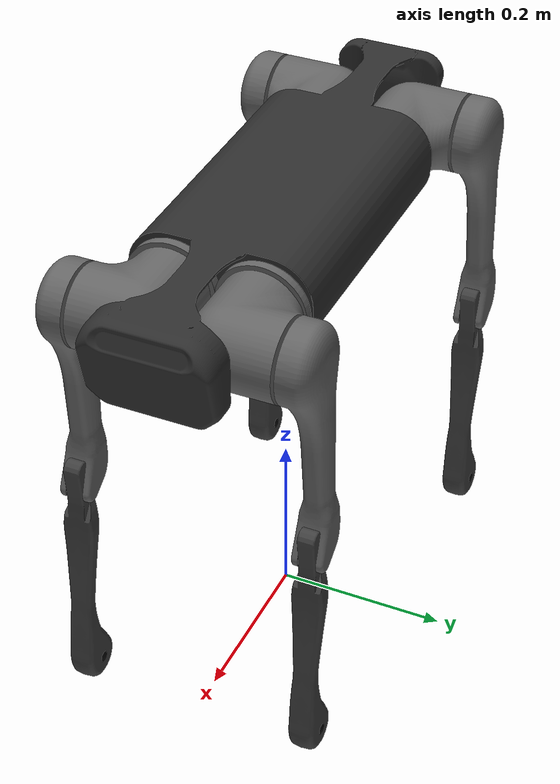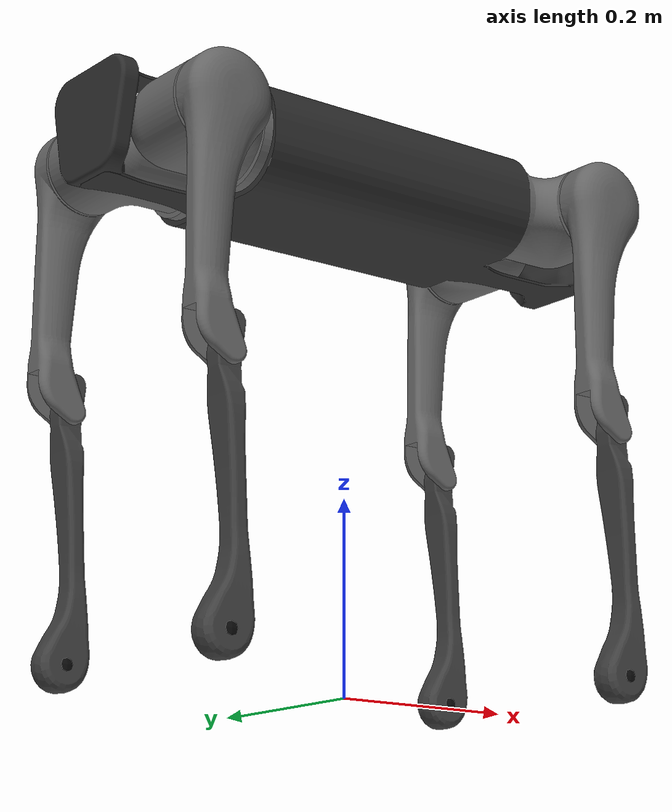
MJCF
<mujoco model="aliengo">
    <default>
        <default class="robot">
            <default class="motor">
                <joint />
                <motor ctrlrange="-44.4 44.4" forcerange="-44.4 44.4" />
            </default>
            <default class="visual">
                <geom material="visualgeom" contype="0" conaffinity="0" group="2" />
            </default>
            <default class="collision">
                <geom material="collision_material" condim="1" contype="0" conaffinity="1"
                    priority="0" group="3" margin="0.001" solref="0.005 1"
                    solimp="0.015 1 0.023" friction="0.8 0.02 0.01" />
                <default class="foot">
                    <geom condim="6" priority="1" />
                </default>
            </default>
        </default>
    </default>

    <compiler angle="radian" />

    <asset>
        <material name="black" rgba="0.0 0.0 0.0 1.0" />
        <material name="blue" rgba="0.0 0.0 0.8 1.0" />
        <material name="green" rgba="0.0 0.8 0.0 1.0" />
        <material name="grey" rgba="0.2 0.2 0.2 1.0" />
        <material name="silver" rgba="0.9137254901960784 0.9137254901960784 0.8470588235294118 1.0" />
        <material name="orange" rgba="1.0 0.4235294117647059 0.0392156862745098 1.0" />
        <material name="brown" rgba="0.8705882352941177 0.8117647058823529 0.7647058823529411 1.0" />
        <material name="red" rgba="0.8 0.0 0.0 1.0" />
        <material name="white" rgba="1.0 1.0 1.0 1.0" />
        <material name="default_material" rgba="0.7 0.7 0.7 1" />
        <material name="collision_material" rgba="1.0 0.28 0.1 0.9" />
        <material name="carbon" rgba="0.18 0.18 0.18 1.0" specular="0.2" shininess="0.3" />
        <material name="leg_grey" rgba="0.4 0.4 0.4 1.0" specular="0.3" shininess="0.4" />
        <material name="calf_grey" rgba="0.251 0.251 0.251 1.0" specular="0.2" shininess="0.3" />
        <material name="foot_black" rgba="0.05 0.05 0.05 1.0" specular="0.1" shininess="0.2" />
        <mesh name="trunk.stl" file="assets/trunk.stl" />
        <mesh name="hip.stl" file="assets/hip.stl" />
        <mesh name="thigh_mirror.stl" file="assets/thigh_mirror.stl" />
        <mesh name="calf.stl" file="assets/calf.stl" scale="0.0254 0.0254 0.0254" />
        <mesh name="thigh.stl" file="assets/thigh.stl" />
    </asset>

    <worldbody>
        <body name="base" pos="0.00000000 0.00000000 0.52650000" quat="1 0 0 0" childclass="robot">
            <freejoint name="floating_base" />
            <geom name="base_visual" pos="0 0 0" quat="1.0 0.0 0.0 0.0" material="default_material"
                type="box" size="0.0005 0.0005 0.0005" class="visual" />
            <body name="trunk" pos="0 0 0" quat="1.0 0.0 0.0 0.0">
                <inertial pos="0.008811 0.003839 0.000273" quat="1.0 0.0 0.0 0.0" mass="11.644"
                    diaginertia="0.051944892 0.24693924 0.270948307" />
                <geom name="trunk_collision" pos="0 0 0" quat="1.0 0.0 0.0 0.0" type="box"
                    size="0.3235 0.075 0.056" class="collision" />
                <geom name="trunk_visual" pos="0 0 0" quat="1.0 0.0 0.0 0.0" material="carbon"
                    type="mesh" mesh="trunk.stl" class="visual" />
                <body name="imu_link" pos="0 0 0" quat="1.0 0.0 0.0 0.0">
                    <inertial pos="0 0 0" quat="1.0 0.0 0.0 0.0" mass="0.001"
                        diaginertia="0.0001 1e-06 0.0001" />
                    <geom name="imu_link_collision" pos="0 0 0" quat="1.0 0.0 0.0 0.0" type="box"
                        size="0.0005 0.0005 0.0005" class="collision" />
                    <geom name="imu_link_visual" pos="0 0 0" quat="1.0 0.0 0.0 0.0" material="red"
                        type="box" size="0.0005 0.0005 0.0005" class="visual" />
                </body>
                <body name="FR_hip" pos="0.2407 -0.051 0" quat="1.0 0.0 0.0 0.0">
                    <joint name="FR_hip_joint" type="hinge" ref="0.0" class="motor"
                        range="-1.2217304763960306 1.2217304763960306" axis="1 0 0" />
                    <inertial pos="-0.022191 -0.015144 -1.5e-05" quat="1.0 0.0 0.0 0.0" mass="1.993"
                        diaginertia="0.002446735 0.003925876 0.004148145" />
                    <geom name="FR_hip_collision" pos="0 -0.083 0"
                        quat="0.7071067811865476 0.7071067811865475 0.0 0.0" type="cylinder"
                        size="0.046 0.0209" class="collision" />
                    <geom name="FR_hip_visual" pos="0 0 0" quat="6.123233995736766e-17 1.0 0.0 0.0"
                        material="leg_grey" type="mesh" mesh="hip.stl" class="visual" />
                    <body name="FR_thigh" pos="0 -0.0868 0" quat="1.0 0.0 0.0 0.0">
                        <joint name="FR_thigh_joint" type="hinge" ref="0.0" class="motor"
                            axis="0 1 0" />
                        <inertial pos="-0.005607 0.003877 -0.048199" quat="1.0 0.0 0.0 0.0"
                            mass="0.639" diaginertia="0.004173855 0.004343802 0.000340136" />
                        <geom name="FR_thigh_collision" pos="0 0 -0.125"
                            quat="0.7071067811865476 0.0 0.7071067811865475 0.0" type="box"
                            size="0.125 0.0187 0.0215" class="collision" />
                        <geom name="FR_thigh_visual" pos="0 0 0" quat="1.0 0.0 0.0 0.0"
                            material="leg_grey" type="mesh" mesh="thigh_mirror.stl" class="visual" />
                        <body name="FR_calf" pos="0 0 -0.25" quat="1.0 0.0 0.0 0.0">
                            <joint name="FR_calf_joint" type="hinge" ref="0.0" class="motor"
                                range="-2.775073510670984 -0.6457718232379019" axis="0 1 0" />
                            <inertial pos="0.002781 6.3e-05 -0.142518" quat="1.0 0.0 0.0 0.0"
                                mass="0.207" diaginertia="0.002129279 0.002141463 3.7583e-05" />
                            <geom name="FR_calf_collision" pos="0 0 -0.125"
                                quat="0.7071067811865476 0.0 0.7071067811865475 0.0" type="box"
                                size="0.125 0.0104 0.008" class="collision" />
                            <geom name="FR_calf_visual" pos="0 0 0" quat="1.0 0.0 0.0 0.0"
                                material="calf_grey" type="mesh" mesh="calf.stl" class="visual" />
                            <body name="FR_foot" pos="0 0 -0.25" quat="1.0 0.0 0.0 0.0">
                                <inertial pos="0 0 0" mass="0.06"
                                    diaginertia="1.6853999999999998e-05 1.6853999999999998e-05 1.6853999999999998e-05" />
                                <geom name="FR_foot_collision" pos="0 0 0" quat="1.0 0.0 0.0 0.0"
                                    type="sphere" size="0.0265" class="foot" />
                                <geom name="FR_foot_visual" pos="0 0 0" quat="1.0 0.0 0.0 0.0"
                                    material="foot_black" type="sphere" size="0.0165" class="visual" />
                            </body>
                        </body>
                        <body name="FR_calf_rotor" pos="0.0 0.0997 0" quat="1.0 0.0 0.0 0.0">
                            <inertial pos="0.0 0.0 0.0" quat="1.0 0.0 0.0 0.0" mass="0.132"
                                diaginertia="0.000145463 0.000133031 0.000145463" />
                            <geom name="FR_calf_rotor_collision" pos="0 0 0"
                                quat="0.7071067811865476 0.7071067811865475 0.0 0.0" type="cylinder"
                                size="0.035 0.01" class="collision" />
                            <geom name="FR_calf_rotor_visual" pos="0 0 0"
                                quat="0.7071067811865476 0.7071067811865475 0.0 0.0"
                                material="leg_grey" type="cylinder" size="0.035 0.01" class="visual" />
                        </body>
                    </body>
                    <body name="FR_thigh_rotor" pos="0.0 -0.0298 0" quat="1.0 0.0 0.0 0.0">
                        <inertial pos="0.0 0.0 0.0" quat="1.0 0.0 0.0 0.0" mass="0.146"
                            diaginertia="8.3352e-05 0.000138702 8.3352e-05" />
                        <geom name="FR_thigh_rotor_collision" pos="0 0 0"
                            quat="0.7071067811865476 0.7071067811865475 0.0 0.0" type="cylinder"
                            size="0.035 0.01" class="collision" />
                        <geom name="FR_thigh_rotor_visual" pos="0 0 0"
                            quat="0.7071067811865476 0.7071067811865475 0.0 0.0" material="leg_grey"
                            type="cylinder" size="0.035 0.01" class="visual" />
                    </body>
                </body>
                <body name="FR_hip_rotor" pos="0.139985 -0.051 0" quat="1.0 0.0 0.0 0.0">
                    <inertial pos="0.0 0.0 0.0" quat="1.0 0.0 0.0 0.0" mass="0.146"
                        diaginertia="0.000138702 8.3352e-05 8.3352e-05" />
                    <geom name="FR_hip_rotor_collision" pos="0 0 0"
                        quat="0.7071067811865476 0.0 0.7071067811865475 0.0" type="cylinder"
                        size="0.035 0.01" class="collision" />
                    <geom name="FR_hip_rotor_visual" pos="0 0 0"
                        quat="0.7071067811865476 0.0 0.7071067811865475 0.0" material="leg_grey"
                        type="cylinder" size="0.035 0.01" class="visual" />
                </body>
                <body name="FL_hip" pos="0.2407 0.051 0" quat="1.0 0.0 0.0 0.0">
                    <joint name="FL_hip_joint" type="hinge" ref="0.0" class="motor"
                        range="-1.2217304763960306 1.2217304763960306" axis="1 0 0" />
                    <inertial pos="-0.022191 0.015144 -1.5e-05" quat="1.0 0.0 0.0 0.0" mass="1.993"
                        diaginertia="0.002446735 0.003925876 0.004148145" />
                    <geom name="FL_hip_collision" pos="0 0.083 0"
                        quat="0.7071067811865476 0.7071067811865475 0.0 0.0" type="cylinder"
                        size="0.046 0.0209" class="collision" />
                    <geom name="FL_hip_visual" pos="0 0 0" quat="1.0 0.0 0.0 0.0"
                        material="leg_grey"
                        type="mesh" mesh="hip.stl" class="visual" />
                    <body name="FL_thigh" pos="0 0.0868 0" quat="1.0 0.0 0.0 0.0">
                        <joint name="FL_thigh_joint" type="hinge" ref="0.0" class="motor"
                            axis="0 1 0" />
                        <inertial pos="-0.005607 -0.003877 -0.048199" quat="1.0 0.0 0.0 0.0"
                            mass="0.639" diaginertia="0.004173855 0.004343802 0.000340136" />
                        <geom name="FL_thigh_collision" pos="0 0 -0.125"
                            quat="0.7071067811865476 0.0 0.7071067811865475 0.0" type="box"
                            size="0.125 0.0187 0.0215" class="collision" />
                        <geom name="FL_thigh_visual" pos="0 0 0" quat="1.0 0.0 0.0 0.0"
                            material="leg_grey" type="mesh" mesh="thigh.stl" class="visual" />
                        <body name="FL_calf" pos="0 0 -0.25" quat="1.0 0.0 0.0 0.0">
                            <joint name="FL_calf_joint" type="hinge" ref="0.0" class="motor"
                                range="-2.775073510670984 -0.6457718232379019" axis="0 1 0" />
                            <inertial pos="0.002781 6.3e-05 -0.142518" quat="1.0 0.0 0.0 0.0"
                                mass="0.207" diaginertia="0.002129279 0.002141463 3.7583e-05" />
                            <geom name="FL_calf_collision" pos="0 0 -0.125"
                                quat="0.7071067811865476 0.0 0.7071067811865475 0.0" type="box"
                                size="0.125 0.0104 0.008" class="collision" />
                            <geom name="FL_calf_visual" pos="0 0 0" quat="1.0 0.0 0.0 0.0"
                                material="calf_grey" type="mesh" mesh="calf.stl" class="visual" />
                            <body name="FL_foot" pos="0 0 -0.25" quat="1.0 0.0 0.0 0.0">
                                <inertial pos="0 0 0" mass="0.06"
                                    diaginertia="1.6853999999999998e-05 1.6853999999999998e-05 1.6853999999999998e-05" />
                                <geom name="FL_foot_collision" pos="0 0 0" quat="1.0 0.0 0.0 0.0"
                                    type="sphere" size="0.0265" class="foot" />
                                <geom name="FL_foot_visual" pos="0 0 0" quat="1.0 0.0 0.0 0.0"
                                    material="foot_black" type="sphere" size="0.0165" class="visual" />
                            </body>
                        </body>
                        <body name="FL_calf_rotor" pos="0.0 -0.0997 0" quat="1.0 0.0 0.0 0.0">
                            <inertial pos="0.0 0.0 0.0" quat="1.0 0.0 0.0 0.0" mass="0.132"
                                diaginertia="0.000145463 0.000133031 0.000145463" />
                            <geom name="FL_calf_rotor_collision" pos="0 0 0"
                                quat="0.7071067811865476 0.7071067811865475 0.0 0.0" type="cylinder"
                                size="0.035 0.01" class="collision" />
                            <geom name="FL_calf_rotor_visual" pos="0 0 0"
                                quat="0.7071067811865476 0.7071067811865475 0.0 0.0"
                                material="leg_grey" type="cylinder" size="0.035 0.01" class="visual" />
                        </body>
                    </body>
                    <body name="FL_thigh_rotor" pos="0.0 0.0298 0" quat="1.0 0.0 0.0 0.0">
                        <inertial pos="0.0 0.0 0.0" quat="1.0 0.0 0.0 0.0" mass="0.146"
                            diaginertia="8.3352e-05 0.000138702 8.3352e-05" />
                        <geom name="FL_thigh_rotor_collision" pos="0 0 0"
                            quat="0.7071067811865476 0.7071067811865475 0.0 0.0" type="cylinder"
                            size="0.035 0.01" class="collision" />
                        <geom name="FL_thigh_rotor_visual" pos="0 0 0"
                            quat="0.7071067811865476 0.7071067811865475 0.0 0.0" material="leg_grey"
                            type="cylinder" size="0.035 0.01" class="visual" />
                    </body>
                </body>
                <body name="FL_hip_rotor" pos="0.139985 0.051 0" quat="1.0 0.0 0.0 0.0">
                    <inertial pos="0.0 0.0 0.0" quat="1.0 0.0 0.0 0.0" mass="0.146"
                        diaginertia="0.000138702 8.3352e-05 8.3352e-05" />
                    <geom name="FL_hip_rotor_collision" pos="0 0 0"
                        quat="0.7071067811865476 0.0 0.7071067811865475 0.0" type="cylinder"
                        size="0.035 0.01" class="collision" />
                    <geom name="FL_hip_rotor_visual" pos="0 0 0"
                        quat="0.7071067811865476 0.0 0.7071067811865475 0.0" material="leg_grey"
                        type="cylinder" size="0.035 0.01" class="visual" />
                </body>
                <body name="RR_hip" pos="-0.2407 -0.051 0" quat="1.0 0.0 0.0 0.0">
                    <joint name="RR_hip_joint" type="hinge" ref="0.0" class="motor"
                        range="-1.2217304763960306 1.2217304763960306" axis="1 0 0" />
                    <inertial pos="0.022191 -0.015144 -1.5e-05" quat="1.0 0.0 0.0 0.0" mass="1.993"
                        diaginertia="0.002446735 0.003925876 0.004148145" />
                    <geom name="RR_hip_collision" pos="0 -0.083 0"
                        quat="0.7071067811865476 0.7071067811865475 0.0 0.0" type="cylinder"
                        size="0.046 0.0209" class="collision" />
                    <geom name="RR_hip_visual" pos="0 0 0"
                        quat="3.749399456654644e-33 6.123233995736766e-17 6.123233995736766e-17 -1.0"
                        material="leg_grey" type="mesh" mesh="hip.stl" class="visual" />
                    <body name="RR_thigh" pos="0 -0.0868 0" quat="1.0 0.0 0.0 0.0">
                        <joint name="RR_thigh_joint" type="hinge" ref="0.0" class="motor"
                            axis="0 1 0" />
                        <inertial pos="-0.005607 0.003877 -0.048199" quat="1.0 0.0 0.0 0.0"
                            mass="0.639" diaginertia="0.004173855 0.004343802 0.000340136" />
                        <geom name="RR_thigh_collision" pos="0 0 -0.125"
                            quat="0.7071067811865476 0.0 0.7071067811865475 0.0" type="box"
                            size="0.125 0.0187 0.0215" class="collision" />
                        <geom name="RR_thigh_visual" pos="0 0 0" quat="1.0 0.0 0.0 0.0"
                            material="leg_grey" type="mesh" mesh="thigh_mirror.stl" class="visual" />
                        <body name="RR_calf" pos="0 0 -0.25" quat="1.0 0.0 0.0 0.0">
                            <joint name="RR_calf_joint" type="hinge" ref="0.0" class="motor"
                                range="-2.775073510670984 -0.6457718232379019" axis="0 1 0" />
                            <inertial pos="0.002781 6.3e-05 -0.142518" quat="1.0 0.0 0.0 0.0"
                                mass="0.207" diaginertia="0.002129279 0.002141463 3.7583e-05" />
                            <geom name="RR_calf_collision" pos="0 0 -0.125"
                                quat="0.7071067811865476 0.0 0.7071067811865475 0.0" type="box"
                                size="0.125 0.0104 0.008" class="collision" />
                            <geom name="RR_calf_visual" pos="0 0 0" quat="1.0 0.0 0.0 0.0"
                                material="calf_grey" type="mesh" mesh="calf.stl" class="visual" />
                            <body name="RR_foot" pos="0 0 -0.25" quat="1.0 0.0 0.0 0.0">
                                <inertial pos="0 0 0" mass="0.06"
                                    diaginertia="1.6853999999999998e-05 1.6853999999999998e-05 1.6853999999999998e-05" />
                                <geom name="RR_foot_collision" pos="0 0 0" quat="1.0 0.0 0.0 0.0"
                                    type="sphere" size="0.0265" class="foot" />
                                <geom name="RR_foot_visual" pos="0 0 0" quat="1.0 0.0 0.0 0.0"
                                    material="foot_black" type="sphere" size="0.0165" class="visual" />
                            </body>
                        </body>
                        <body name="RR_calf_rotor" pos="0.0 0.0997 0" quat="1.0 0.0 0.0 0.0">
                            <inertial pos="0.0 0.0 0.0" quat="1.0 0.0 0.0 0.0" mass="0.132"
                                diaginertia="0.000145463 0.000133031 0.000145463" />
                            <geom name="RR_calf_rotor_collision" pos="0 0 0"
                                quat="0.7071067811865476 0.7071067811865475 0.0 0.0" type="cylinder"
                                size="0.035 0.01" class="collision" />
                            <geom name="RR_calf_rotor_visual" pos="0 0 0"
                                quat="0.7071067811865476 0.7071067811865475 0.0 0.0"
                                material="leg_grey" type="cylinder" size="0.035 0.01" class="visual" />
                        </body>
                    </body>
                    <body name="RR_thigh_rotor" pos="0.0 -0.0298 0" quat="1.0 0.0 0.0 0.0">
                        <inertial pos="0.0 0.0 0.0" quat="1.0 0.0 0.0 0.0" mass="0.146"
                            diaginertia="8.3352e-05 0.000138702 8.3352e-05" />
                        <geom name="RR_thigh_rotor_collision" pos="0 0 0"
                            quat="0.7071067811865476 0.7071067811865475 0.0 0.0" type="cylinder"
                            size="0.035 0.01" class="collision" />
                        <geom name="RR_thigh_rotor_visual" pos="0 0 0"
                            quat="0.7071067811865476 0.7071067811865475 0.0 0.0" material="leg_grey"
                            type="cylinder" size="0.035 0.01" class="visual" />
                    </body>
                </body>
                <body name="RR_hip_rotor" pos="-0.139985 -0.051 0" quat="1.0 0.0 0.0 0.0">
                    <inertial pos="0.0 0.0 0.0" quat="1.0 0.0 0.0 0.0" mass="0.146"
                        diaginertia="0.000138702 8.3352e-05 8.3352e-05" />
                    <geom name="RR_hip_rotor_collision" pos="0 0 0"
                        quat="0.7071067811865476 0.0 0.7071067811865475 0.0" type="cylinder"
                        size="0.035 0.01" class="collision" />
                    <geom name="RR_hip_rotor_visual" pos="0 0 0"
                        quat="0.7071067811865476 0.0 0.7071067811865475 0.0" material="leg_grey"
                        type="cylinder" size="0.035 0.01" class="visual" />
                </body>
                <body name="RL_hip" pos="-0.2407 0.051 0" quat="1.0 0.0 0.0 0.0">
                    <joint name="RL_hip_joint" type="hinge" ref="0.0" class="motor"
                        range="-1.2217304763960306 1.2217304763960306" axis="1 0 0" />
                    <inertial pos="0.022191 0.015144 -1.5e-05" quat="1.0 0.0 0.0 0.0" mass="1.993"
                        diaginertia="0.002446735 0.003925876 0.004148145" />
                    <geom name="RL_hip_collision" pos="0 0.083 0"
                        quat="0.7071067811865476 0.7071067811865475 0.0 0.0" type="cylinder"
                        size="0.046 0.0209" class="collision" />
                    <geom name="RL_hip_visual" pos="0 0 0" quat="6.123233995736766e-17 0.0 1.0 0.0"
                        material="leg_grey" type="mesh" mesh="hip.stl" class="visual" />
                    <body name="RL_thigh" pos="0 0.0868 0" quat="1.0 0.0 0.0 0.0">
                        <joint name="RL_thigh_joint" type="hinge" ref="0.0" class="motor"
                            axis="0 1 0" />
                        <inertial pos="-0.005607 -0.003877 -0.048199" quat="1.0 0.0 0.0 0.0"
                            mass="0.639" diaginertia="0.004173855 0.004343802 0.000340136" />
                        <geom name="RL_thigh_collision" pos="0 0 -0.125"
                            quat="0.7071067811865476 0.0 0.7071067811865475 0.0" type="box"
                            size="0.125 0.0187 0.0215" class="collision" />
                        <geom name="RL_thigh_visual" pos="0 0 0" quat="1.0 0.0 0.0 0.0"
                            material="leg_grey" type="mesh" mesh="thigh.stl" class="visual" />
                        <body name="RL_calf" pos="0 0 -0.25" quat="1.0 0.0 0.0 0.0">
                            <joint name="RL_calf_joint" type="hinge" ref="0.0" class="motor"
                                range="-2.775073510670984 -0.6457718232379019" axis="0 1 0" />
                            <inertial pos="0.002781 6.3e-05 -0.142518" quat="1.0 0.0 0.0 0.0"
                                mass="0.207" diaginertia="0.002129279 0.002141463 3.7583e-05" />
                            <geom name="RL_calf_collision" pos="0 0 -0.125"
                                quat="0.7071067811865476 0.0 0.7071067811865475 0.0" type="box"
                                size="0.125 0.0104 0.008" class="collision" />
                            <geom name="RL_calf_visual" pos="0 0 0" quat="1.0 0.0 0.0 0.0"
                                material="calf_grey" type="mesh" mesh="calf.stl" class="visual" />
                            <body name="RL_foot" pos="0 0 -0.25" quat="1.0 0.0 0.0 0.0">
                                <inertial pos="0 0 0" mass="0.06"
                                    diaginertia="1.6853999999999998e-05 1.6853999999999998e-05 1.6853999999999998e-05" />
                                <geom name="RL_foot_collision" pos="0 0 0" quat="1.0 0.0 0.0 0.0"
                                    type="sphere" size="0.0265" class="foot" />
                                <geom name="RL_foot_visual" pos="0 0 0" quat="1.0 0.0 0.0 0.0"
                                    material="foot_black" type="sphere" size="0.0165" class="visual" />
                            </body>
                        </body>
                        <body name="RL_calf_rotor" pos="0.0 -0.0997 0" quat="1.0 0.0 0.0 0.0">
                            <inertial pos="0.0 0.0 0.0" quat="1.0 0.0 0.0 0.0" mass="0.132"
                                diaginertia="0.000145463 0.000133031 0.000145463" />
                            <geom name="RL_calf_rotor_collision" pos="0 0 0"
                                quat="0.7071067811865476 0.7071067811865475 0.0 0.0" type="cylinder"
                                size="0.035 0.01" class="collision" />
                            <geom name="RL_calf_rotor_visual" pos="0 0 0"
                                quat="0.7071067811865476 0.7071067811865475 0.0 0.0"
                                material="leg_grey" type="cylinder" size="0.035 0.01" class="visual" />
                        </body>
                    </body>
                    <body name="RL_thigh_rotor" pos="0.0 0.0298 0" quat="1.0 0.0 0.0 0.0">
                        <inertial pos="0.0 0.0 0.0" quat="1.0 0.0 0.0 0.0" mass="0.146"
                            diaginertia="8.3352e-05 0.000138702 8.3352e-05" />
                        <geom name="RL_thigh_rotor_collision" pos="0 0 0"
                            quat="0.7071067811865476 0.7071067811865475 0.0 0.0" type="cylinder"
                            size="0.035 0.01" class="collision" />
                        <geom name="RL_thigh_rotor_visual" pos="0 0 0"
                            quat="0.7071067811865476 0.7071067811865475 0.0 0.0" material="leg_grey"
                            type="cylinder" size="0.035 0.01" class="visual" />
                    </body>
                </body>
                <body name="RL_hip_rotor" pos="-0.139985 0.051 0" quat="1.0 0.0 0.0 0.0">
                    <inertial pos="0.0 0.0 0.0" quat="1.0 0.0 0.0 0.0" mass="0.146"
                        diaginertia="0.000138702 8.3352e-05 8.3352e-05" />
                    <geom name="RL_hip_rotor_collision" pos="0 0 0"
                        quat="0.7071067811865476 0.0 0.7071067811865475 0.0" type="cylinder"
                        size="0.035 0.01" class="collision" />
                    <geom name="RL_hip_rotor_visual" pos="0 0 0"
                        quat="0.7071067811865476 0.0 0.7071067811865475 0.0" material="leg_grey"
                        type="cylinder" size="0.035 0.01" class="visual" />
                </body>
            </body>
            <site name="base_site" pos="0 0 0" quat="1 0 0 0" />
            <camera name="front_camera" mode="track" fovy="90.0"
                quat="4.329780281177467e-17 4.329780281177466e-17 0.7071067811865475 0.7071067811865476"
                pos="0.0 2.0 0.5" />
            <camera name="side_camera" mode="track" fovy="90.0"
                quat="-0.5 -0.4999999999999999 0.5 0.5000000000000001" pos="-2.0 0.0 0.5" />
        </body>
    </worldbody>

    <actuator>
        <motor name="FR_hip_joint_ctrl" joint="FR_hip_joint" class="motor" />
        <motor name="FR_thigh_joint_ctrl" joint="FR_thigh_joint" class="motor" />
        <motor name="FR_calf_joint_ctrl" joint="FR_calf_joint" class="motor" />
        <motor name="FL_hip_joint_ctrl" joint="FL_hip_joint" class="motor" />
        <motor name="FL_thigh_joint_ctrl" joint="FL_thigh_joint" class="motor" />
        <motor name="FL_calf_joint_ctrl" joint="FL_calf_joint" class="motor" />
        <motor name="RR_hip_joint_ctrl" joint="RR_hip_joint" class="motor" />
        <motor name="RR_thigh_joint_ctrl" joint="RR_thigh_joint" class="motor" />
        <motor name="RR_calf_joint_ctrl" joint="RR_calf_joint" class="motor" />
        <motor name="RL_hip_joint_ctrl" joint="RL_hip_joint" class="motor" />
        <motor name="RL_thigh_joint_ctrl" joint="RL_thigh_joint" class="motor" />
        <motor name="RL_calf_joint_ctrl" joint="RL_calf_joint" class="motor" />
    </actuator>

    <contact>
        <exclude body1="trunk" body2="imu_link" />
        <exclude body1="trunk" body2="FR_hip" />
        <exclude body1="trunk" body2="FR_hip_rotor" />
        <exclude body1="FR_hip" body2="FR_thigh" />
        <exclude body1="FR_hip" body2="FR_thigh_rotor" />
        <exclude body1="FR_thigh" body2="FR_calf" />
        <exclude body1="FR_thigh" body2="FR_calf_rotor" />
        <exclude body1="FR_calf" body2="FR_foot" />
        <exclude body1="trunk" body2="FL_hip" />
        <exclude body1="trunk" body2="FL_hip_rotor" />
        <exclude body1="FL_hip" body2="FL_thigh" />
        <exclude body1="FL_hip" body2="FL_thigh_rotor" />
        <exclude body1="FL_thigh" body2="FL_calf" />
        <exclude body1="FL_thigh" body2="FL_calf_rotor" />
        <exclude body1="FL_calf" body2="FL_foot" />
        <exclude body1="trunk" body2="RR_hip" />
        <exclude body1="trunk" body2="RR_hip_rotor" />
        <exclude body1="RR_hip" body2="RR_thigh" />
        <exclude body1="RR_hip" body2="RR_thigh_rotor" />
        <exclude body1="RR_thigh" body2="RR_calf" />
        <exclude body1="RR_thigh" body2="RR_calf_rotor" />
        <exclude body1="RR_calf" body2="RR_foot" />
        <exclude body1="trunk" body2="RL_hip" />
        <exclude body1="trunk" body2="RL_hip_rotor" />
        <exclude body1="RL_hip" body2="RL_thigh" />
        <exclude body1="RL_hip" body2="RL_thigh_rotor" />
        <exclude body1="RL_thigh" body2="RL_calf" />
        <exclude body1="RL_thigh" body2="RL_calf_rotor" />
        <exclude body1="RL_calf" body2="RL_foot" />
    </contact>

    <sensor>
        <framepos name="base_site_pos" objtype="site" objname="base_site" />
        <framequat name="base_site_quat" objtype="site" objname="base_site" />
        <framelinvel name="base_site_linvel" objtype="site" objname="base_site" />
        <frameangvel name="base_site_angvel" objtype="site" objname="base_site" />
        <velocimeter name="base_site_vel" site="base_site" />
    </sensor>
</mujoco>
